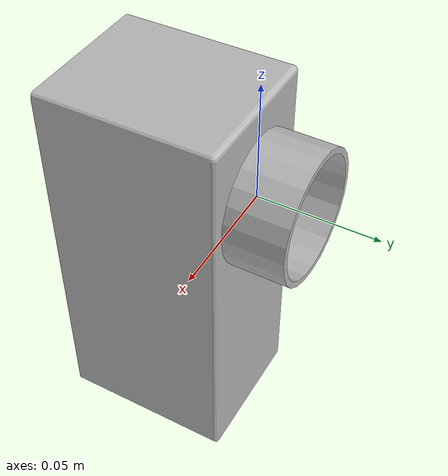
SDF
<?xml version="1.0" ?>
<sdf version="1.5">
  <model name="socket">
    <pose>0 0 0 1.57 0 3.14</pose>
    <link name="socket">
      <pose frame=''>0 0 0 0 -0 0</pose>
      <inertial>
        <pose frame=''>0 -0.041907 -0.028887 0 -0 0</pose>
        <mass>0.1684</mass>
        <inertia>
          <ixx>0.00062222</ixx>
          <ixy>9.8906e-10</ixy>
          <ixz>2.4666e-10</ixz>
          <iyy>0.00021389</iyy>
          <iyz>9.0339e-06</iyz>
          <izz>0.00061855</izz>
        </inertia>
      </inertial>
      <collision name="socket_collision">
        <pose frame=''>0 0 0 1.5708 -0 0</pose>
        <geometry>
          <mesh>
            <scale>1 1 1</scale>
            <uri>model://socket/meshes/peng.STL</uri>
          </mesh>
        </geometry>
      </collision>
      <visual name="socket_visual">
        <pose frame=''>0 0 0 1.5708 -0 0</pose>
        <geometry>
          <mesh>
            <scale>1 1 1</scale>
            <uri>model://socket/meshes/peng.STL</uri>
          </mesh>
        </geometry>
      </visual>
    </link>
  </model>
</sdf>
